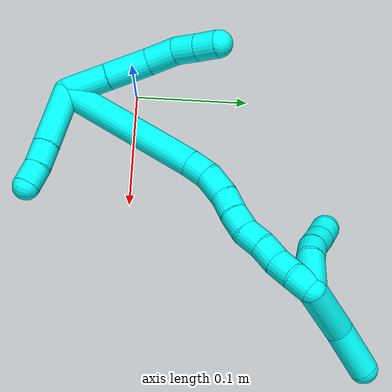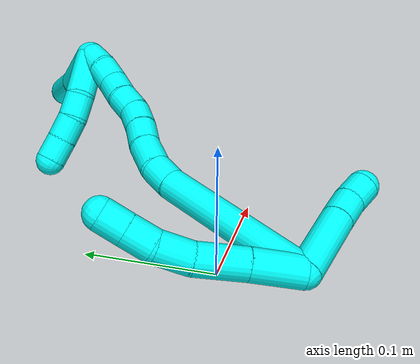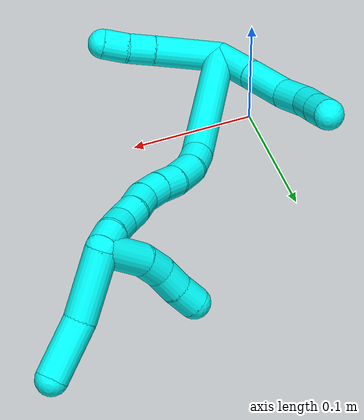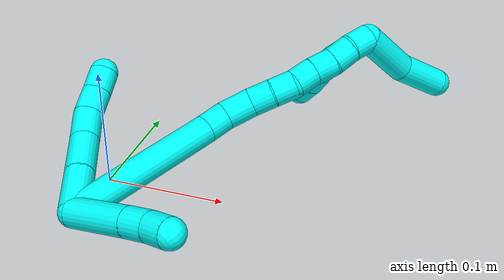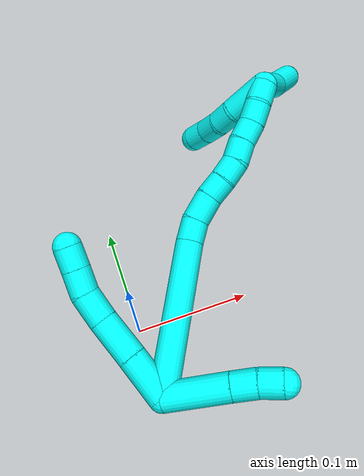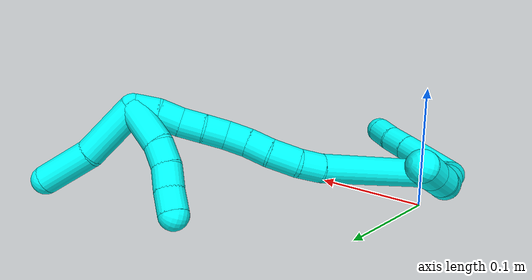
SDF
<sdf version="1.7">
 <world name="default">
  <model name="3">
   <static>0</static>
   <link name="3">
    <collision name="collision-cylinder-e_1_2_8">
     <pose>-0.002732 0.014466 0.013894 -0.805537 -0.135355 0.057742</pose>
     <geometry><cylinder><radius>0.0125</radius><length>0.040486</length></cylinder></geometry>
     <surface>
      <friction><ode><mu>1.16</mu><mu2>1.16</mu2><slip1>0</slip1><slip2>0</slip2></ode></friction>
      <contact><ode><kp>1e+06</kp><kd>1</kd><max_vel>0</max_vel><min_depth>0.001</min_depth></ode></contact>
     </surface>
    </collision>
    <visual name="visual-cylinder-e_1_2_8">
     <pose>-0.002732 0.014466 0.013894 -0.805537 -0.135355 0.057742</pose>
     <geometry><cylinder><radius>0.0125</radius><length>0.040486</length></cylinder></geometry>
     <material><ambient>0.003922 1 0.996078 1</ambient></material>
    </visual>
    <collision name="collision-cylinder-e_2_8_9">
     <pose>-0.007586 0.043465 0.040977 -0.83391 -0.107761 0.047767</pose>
     <geometry><cylinder><radius>0.0125</radius><length>0.03948</length></cylinder></geometry>
     <surface>
      <friction><ode><mu>1.16</mu><mu2>1.16</mu2><slip1>0</slip1><slip2>0</slip2></ode></friction>
      <contact><ode><kp>1e+06</kp><kd>1</kd><max_vel>0</max_vel><min_depth>0.001</min_depth></ode></contact>
     </surface>
    </collision>
    <visual name="visual-cylinder-e_2_8_9">
     <pose>-0.007586 0.043465 0.040977 -0.83391 -0.107761 0.047767</pose>
     <geometry><cylinder><radius>0.0125</radius><length>0.03948</length></cylinder></geometry>
     <material><ambient>0.003922 1 0.996078 1</ambient></material>
    </visual>
    <collision name="collision-cylinder-e_3_9_10">
     <pose>-0.013693 0.066444 0.064181 -0.700507 -0.295193 0.108522</pose>
     <geometry><cylinder><radius>0.0125</radius><length>0.027385</length></cylinder></geometry>
     <surface>
      <friction><ode><mu>1.16</mu><mu2>1.16</mu2><slip1>0</slip1><slip2>0</slip2></ode></friction>
      <contact><ode><kp>1e+06</kp><kd>1</kd><max_vel>0</max_vel><min_depth>0.001</min_depth></ode></contact>
     </surface>
    </collision>
    <visual name="visual-cylinder-e_3_9_10">
     <pose>-0.013693 0.066444 0.064181 -0.700507 -0.295193 0.108522</pose>
     <geometry><cylinder><radius>0.0125</radius><length>0.027385</length></cylinder></geometry>
     <material><ambient>0.003922 1 0.996078 1</ambient></material>
    </visual>
    <collision name="collision-cylinder-e_4_10_11">
     <pose>-0.02074 0.079256 0.083882 -0.423623 -0.280754 0.060754</pose>
     <geometry><cylinder><radius>0.0125</radius><length>0.022117</length></cylinder></geometry>
     <surface>
      <friction><ode><mu>1.16</mu><mu2>1.16</mu2><slip1>0</slip1><slip2>0</slip2></ode></friction>
      <contact><ode><kp>1e+06</kp><kd>1</kd><max_vel>0</max_vel><min_depth>0.001</min_depth></ode></contact>
     </surface>
    </collision>
    <visual name="visual-cylinder-e_4_10_11">
     <pose>-0.02074 0.079256 0.083882 -0.423623 -0.280754 0.060754</pose>
     <geometry><cylinder><radius>0.0125</radius><length>0.022117</length></cylinder></geometry>
     <material><ambient>0.003922 1 0.996078 1</ambient></material>
    </visual>
    <collision name="collision-cylinder-e_5_11_6">
     <pose>-0.026948 0.087659 0.102469 -0.425608 -0.311227 0.067771</pose>
     <geometry><cylinder><radius>0.0125</radius><length>0.020532</length></cylinder></geometry>
     <surface>
      <friction><ode><mu>1.16</mu><mu2>1.16</mu2><slip1>0</slip1><slip2>0</slip2></ode></friction>
      <contact><ode><kp>1e+06</kp><kd>1</kd><max_vel>0</max_vel><min_depth>0.001</min_depth></ode></contact>
     </surface>
    </collision>
    <visual name="visual-cylinder-e_5_11_6">
     <pose>-0.026948 0.087659 0.102469 -0.425608 -0.311227 0.067771</pose>
     <geometry><cylinder><radius>0.0125</radius><length>0.020532</length></cylinder></geometry>
     <material><ambient>0.003922 1 0.996078 1</ambient></material>
    </visual>
    <collision name="collision-cylinder-e_1_2_12">
     <pose>0.001964 -0.027382 0.008548 1.2682 0.068346 0.050271</pose>
     <geometry><cylinder><radius>0.0125</radius><length>0.057505</length></cylinder></geometry>
     <surface>
      <friction><ode><mu>1.16</mu><mu2>1.16</mu2><slip1>0</slip1><slip2>0</slip2></ode></friction>
      <contact><ode><kp>1e+06</kp><kd>1</kd><max_vel>0</max_vel><min_depth>0.001</min_depth></ode></contact>
     </surface>
    </collision>
    <visual name="visual-cylinder-e_1_2_12">
     <pose>0.001964 -0.027382 0.008548 1.2682 0.068346 0.050271</pose>
     <geometry><cylinder><radius>0.0125</radius><length>0.057505</length></cylinder></geometry>
     <material><ambient>0.003922 1 0.996078 1</ambient></material>
    </visual>
    <collision name="collision-cylinder-e_2_12_13">
     <pose>0.004889 -0.065181 0.020149 1.28573 0.08841 0.066238</pose>
     <geometry><cylinder><radius>0.0125</radius><length>0.021795</length></cylinder></geometry>
     <surface>
      <friction><ode><mu>1.16</mu><mu2>1.16</mu2><slip1>0</slip1><slip2>0</slip2></ode></friction>
      <contact><ode><kp>1e+06</kp><kd>1</kd><max_vel>0</max_vel><min_depth>0.001</min_depth></ode></contact>
     </surface>
    </collision>
    <visual name="visual-cylinder-e_2_12_13">
     <pose>0.004889 -0.065181 0.020149 1.28573 0.08841 0.066238</pose>
     <geometry><cylinder><radius>0.0125</radius><length>0.021795</length></cylinder></geometry>
     <material><ambient>0.003922 1 0.996078 1</ambient></material>
    </visual>
    <collision name="collision-cylinder-e_3_13_5">
     <pose>0.006308 -0.085813 0.024801 1.41554 0.044117 0.037751</pose>
     <geometry><cylinder><radius>0.0125</radius><length>0.0207</length></cylinder></geometry>
     <surface>
      <friction><ode><mu>1.16</mu><mu2>1.16</mu2><slip1>0</slip1><slip2>0</slip2></ode></friction>
      <contact><ode><kp>1e+06</kp><kd>1</kd><max_vel>0</max_vel><min_depth>0.001</min_depth></ode></contact>
     </surface>
    </collision>
    <visual name="visual-cylinder-e_3_13_5">
     <pose>0.006308 -0.085813 0.024801 1.41554 0.044117 0.037751</pose>
     <geometry><cylinder><radius>0.0125</radius><length>0.0207</length></cylinder></geometry>
     <material><ambient>0.003922 1 0.996078 1</ambient></material>
    </visual>
    <collision name="collision-cylinder-e_1_2_14">
     <pose>0.013434 0.001336 0.065383 -0.020427 0.202603 -0.002076</pose>
     <geometry><cylinder><radius>0.0125</radius><length>0.133524</length></cylinder></geometry>
     <surface>
      <friction><ode><mu>1.16</mu><mu2>1.16</mu2><slip1>0</slip1><slip2>0</slip2></ode></friction>
      <contact><ode><kp>1e+06</kp><kd>1</kd><max_vel>0</max_vel><min_depth>0.001</min_depth></ode></contact>
     </surface>
    </collision>
    <visual name="visual-cylinder-e_1_2_14">
     <pose>0.013434 0.001336 0.065383 -0.020427 0.202603 -0.002076</pose>
     <geometry><cylinder><radius>0.0125</radius><length>0.133524</length></cylinder></geometry>
     <material><ambient>0.003922 1 0.996078 1</ambient></material>
    </visual>
    <collision name="collision-cylinder-e_2_14_15">
     <pose>0.027776 0.001551 0.141137 0.107611 0.08683 0.004679</pose>
     <geometry><cylinder><radius>0.0125</radius><length>0.020942</length></cylinder></geometry>
     <surface>
      <friction><ode><mu>1.16</mu><mu2>1.16</mu2><slip1>0</slip1><slip2>0</slip2></ode></friction>
      <contact><ode><kp>1e+06</kp><kd>1</kd><max_vel>0</max_vel><min_depth>0.001</min_depth></ode></contact>
     </surface>
    </collision>
    <visual name="visual-cylinder-e_2_14_15">
     <pose>0.027776 0.001551 0.141137 0.107611 0.08683 0.004679</pose>
     <geometry><cylinder><radius>0.0125</radius><length>0.020942</length></cylinder></geometry>
     <material><ambient>0.003922 1 0.996078 1</ambient></material>
    </visual>
    <collision name="collision-cylinder-e_3_15_16">
     <pose>0.029549 -0.004352 0.163237 0.387191 0.068184 0.013372</pose>
     <geometry><cylinder><radius>0.0125</radius><length>0.025392</length></cylinder></geometry>
     <surface>
      <friction><ode><mu>1.16</mu><mu2>1.16</mu2><slip1>0</slip1><slip2>0</slip2></ode></friction>
      <contact><ode><kp>1e+06</kp><kd>1</kd><max_vel>0</max_vel><min_depth>0.001</min_depth></ode></contact>
     </surface>
    </collision>
    <visual name="visual-cylinder-e_3_15_16">
     <pose>0.029549 -0.004352 0.163237 0.387191 0.068184 0.013372</pose>
     <geometry><cylinder><radius>0.0125</radius><length>0.025392</length></cylinder></geometry>
     <material><ambient>0.003922 1 0.996078 1</ambient></material>
    </visual>
    <collision name="collision-cylinder-e_4_16_17">
     <pose>0.030739 -0.014573 0.183421 0.571606 0.03232 0.009498</pose>
     <geometry><cylinder><radius>0.0125</radius><length>0.020116</length></cylinder></geometry>
     <surface>
      <friction><ode><mu>1.16</mu><mu2>1.16</mu2><slip1>0</slip1><slip2>0</slip2></ode></friction>
      <contact><ode><kp>1e+06</kp><kd>1</kd><max_vel>0</max_vel><min_depth>0.001</min_depth></ode></contact>
     </surface>
    </collision>
    <visual name="visual-cylinder-e_4_16_17">
     <pose>0.030739 -0.014573 0.183421 0.571606 0.03232 0.009498</pose>
     <geometry><cylinder><radius>0.0125</radius><length>0.020116</length></cylinder></geometry>
     <material><ambient>0.003922 1 0.996078 1</ambient></material>
    </visual>
    <collision name="collision-cylinder-e_5_17_18">
     <pose>0.032035 -0.024484 0.200771 0.465866 0.097231 0.023084</pose>
     <geometry><cylinder><radius>0.0125</radius><length>0.020008</length></cylinder></geometry>
     <surface>
      <friction><ode><mu>1.16</mu><mu2>1.16</mu2><slip1>0</slip1><slip2>0</slip2></ode></friction>
      <contact><ode><kp>1e+06</kp><kd>1</kd><max_vel>0</max_vel><min_depth>0.001</min_depth></ode></contact>
     </surface>
    </collision>
    <visual name="visual-cylinder-e_5_17_18">
     <pose>0.032035 -0.024484 0.200771 0.465866 0.097231 0.023084</pose>
     <geometry><cylinder><radius>0.0125</radius><length>0.020008</length></cylinder></geometry>
     <material><ambient>0.003922 1 0.996078 1</ambient></material>
    </visual>
    <collision name="collision-cylinder-e_6_18_19">
     <pose>0.033618 -0.030713 0.219492 0.176875 0.061236 0.005431</pose>
     <geometry><cylinder><radius>0.0125</radius><length>0.020001</length></cylinder></geometry>
     <surface>
      <friction><ode><mu>1.16</mu><mu2>1.16</mu2><slip1>0</slip1><slip2>0</slip2></ode></friction>
      <contact><ode><kp>1e+06</kp><kd>1</kd><max_vel>0</max_vel><min_depth>0.001</min_depth></ode></contact>
     </surface>
    </collision>
    <visual name="visual-cylinder-e_6_18_19">
     <pose>0.033618 -0.030713 0.219492 0.176875 0.061236 0.005431</pose>
     <geometry><cylinder><radius>0.0125</radius><length>0.020001</length></cylinder></geometry>
     <material><ambient>0.003922 1 0.996078 1</ambient></material>
    </visual>
    <collision name="collision-cylinder-e_7_19_20">
     <pose>0.035455 -0.035702 0.238707 0.331645 0.122684 0.020557</pose>
     <geometry><cylinder><radius>0.0125</radius><length>0.02001</length></cylinder></geometry>
     <surface>
      <friction><ode><mu>1.16</mu><mu2>1.16</mu2><slip1>0</slip1><slip2>0</slip2></ode></friction>
      <contact><ode><kp>1e+06</kp><kd>1</kd><max_vel>0</max_vel><min_depth>0.001</min_depth></ode></contact>
     </surface>
    </collision>
    <visual name="visual-cylinder-e_7_19_20">
     <pose>0.035455 -0.035702 0.238707 0.331645 0.122684 0.020557</pose>
     <geometry><cylinder><radius>0.0125</radius><length>0.02001</length></cylinder></geometry>
     <material><ambient>0.003922 1 0.996078 1</ambient></material>
    </visual>
    <collision name="collision-cylinder-e_8_20_21">
     <pose>0.036256 -0.041079 0.257856 0.216239 -0.042266 -0.004588</pose>
     <geometry><cylinder><radius>0.0125</radius><length>0.020003</length></cylinder></geometry>
     <surface>
      <friction><ode><mu>1.16</mu><mu2>1.16</mu2><slip1>0</slip1><slip2>0</slip2></ode></friction>
      <contact><ode><kp>1e+06</kp><kd>1</kd><max_vel>0</max_vel><min_depth>0.001</min_depth></ode></contact>
     </surface>
    </collision>
    <visual name="visual-cylinder-e_8_20_21">
     <pose>0.036256 -0.041079 0.257856 0.216239 -0.042266 -0.004588</pose>
     <geometry><cylinder><radius>0.0125</radius><length>0.020003</length></cylinder></geometry>
     <material><ambient>0.003922 1 0.996078 1</ambient></material>
    </visual>
    <collision name="collision-cylinder-e_9_21_1">
     <pose>0.03734 -0.04469 0.277394 0.148835 0.151153 0.011291</pose>
     <geometry><cylinder><radius>0.0125</radius><length>0.020004</length></cylinder></geometry>
     <surface>
      <friction><ode><mu>1.16</mu><mu2>1.16</mu2><slip1>0</slip1><slip2>0</slip2></ode></friction>
      <contact><ode><kp>1e+06</kp><kd>1</kd><max_vel>0</max_vel><min_depth>0.001</min_depth></ode></contact>
     </surface>
    </collision>
    <visual name="visual-cylinder-e_9_21_1">
     <pose>0.03734 -0.04469 0.277394 0.148835 0.151153 0.011291</pose>
     <geometry><cylinder><radius>0.0125</radius><length>0.020004</length></cylinder></geometry>
     <material><ambient>0.003922 1 0.996078 1</ambient></material>
    </visual>
    <collision name="collision-cylinder-e_1_1_22">
     <pose>0.063505 -0.046485 0.297742 0.031108 1.16569 0.020509</pose>
     <geometry><cylinder><radius>0.0125</radius><length>0.05366</length></cylinder></geometry>
     <surface>
      <friction><ode><mu>1.16</mu><mu2>1.16</mu2><slip1>0</slip1><slip2>0</slip2></ode></friction>
      <contact><ode><kp>1e+06</kp><kd>1</kd><max_vel>0</max_vel><min_depth>0.001</min_depth></ode></contact>
     </surface>
    </collision>
    <visual name="visual-cylinder-e_1_1_22">
     <pose>0.063505 -0.046485 0.297742 0.031108 1.16569 0.020509</pose>
     <geometry><cylinder><radius>0.0125</radius><length>0.05366</length></cylinder></geometry>
     <material><ambient>0.003922 1 0.996078 1</ambient></material>
    </visual>
    <collision name="collision-cylinder-e_2_22_4">
     <pose>0.106915 -0.050517 0.321407 0.275614 0.943003 0.141185</pose>
     <geometry><cylinder><radius>0.0125</radius><length>0.04634</length></cylinder></geometry>
     <surface>
      <friction><ode><mu>1.16</mu><mu2>1.16</mu2><slip1>0</slip1><slip2>0</slip2></ode></friction>
      <contact><ode><kp>1e+06</kp><kd>1</kd><max_vel>0</max_vel><min_depth>0.001</min_depth></ode></contact>
     </surface>
    </collision>
    <visual name="visual-cylinder-e_2_22_4">
     <pose>0.106915 -0.050517 0.321407 0.275614 0.943003 0.141185</pose>
     <geometry><cylinder><radius>0.0125</radius><length>0.04634</length></cylinder></geometry>
     <material><ambient>0.003922 1 0.996078 1</ambient></material>
    </visual>
    <collision name="collision-cylinder-e_1_1_23">
     <pose>0.045043 -0.03121 0.276086 -2.20906 0.321487 -0.623347</pose>
     <geometry><cylinder><radius>0.0125</radius><length>0.039227</length></cylinder></geometry>
     <surface>
      <friction><ode><mu>1.16</mu><mu2>1.16</mu2><slip1>0</slip1><slip2>0</slip2></ode></friction>
      <contact><ode><kp>1e+06</kp><kd>1</kd><max_vel>0</max_vel><min_depth>0.001</min_depth></ode></contact>
     </surface>
    </collision>
    <visual name="visual-cylinder-e_1_1_23">
     <pose>0.045043 -0.03121 0.276086 -2.20906 0.321487 -0.623347</pose>
     <geometry><cylinder><radius>0.0125</radius><length>0.039227</length></cylinder></geometry>
     <material><ambient>0.003922 1 0.996078 1</ambient></material>
    </visual>
    <collision name="collision-cylinder-e_2_23_24">
     <pose>0.056459 -0.00888 0.260691 -2.09886 0.547963 -0.910119</pose>
     <geometry><cylinder><radius>0.0125</radius><length>0.020032</length></cylinder></geometry>
     <surface>
      <friction><ode><mu>1.16</mu><mu2>1.16</mu2><slip1>0</slip1><slip2>0</slip2></ode></friction>
      <contact><ode><kp>1e+06</kp><kd>1</kd><max_vel>0</max_vel><min_depth>0.001</min_depth></ode></contact>
     </surface>
    </collision>
    <visual name="visual-cylinder-e_2_23_24">
     <pose>0.056459 -0.00888 0.260691 -2.09886 0.547963 -0.910119</pose>
     <geometry><cylinder><radius>0.0125</radius><length>0.020032</length></cylinder></geometry>
     <material><ambient>0.003922 1 0.996078 1</ambient></material>
    </visual>
    <collision name="collision-cylinder-e_3_24_25">
     <pose>0.068071 0.006292 0.254131 -1.85229 0.667877 -0.864697</pose>
     <geometry><cylinder><radius>0.0125</radius><length>0.02065</length></cylinder></geometry>
     <surface>
      <friction><ode><mu>1.16</mu><mu2>1.16</mu2><slip1>0</slip1><slip2>0</slip2></ode></friction>
      <contact><ode><kp>1e+06</kp><kd>1</kd><max_vel>0</max_vel><min_depth>0.001</min_depth></ode></contact>
     </surface>
    </collision>
    <visual name="visual-cylinder-e_3_24_25">
     <pose>0.068071 0.006292 0.254131 -1.85229 0.667877 -0.864697</pose>
     <geometry><cylinder><radius>0.0125</radius><length>0.02065</length></cylinder></geometry>
     <material><ambient>0.003922 1 0.996078 1</ambient></material>
    </visual>
    <collision name="collision-cylinder-e_4_25_3">
     <pose>0.079814 0.022195 0.249339 -1.87415 0.561504 -0.747928</pose>
     <geometry><cylinder><radius>0.0125</radius><length>0.02009</length></cylinder></geometry>
     <surface>
      <friction><ode><mu>1.16</mu><mu2>1.16</mu2><slip1>0</slip1><slip2>0</slip2></ode></friction>
      <contact><ode><kp>1e+06</kp><kd>1</kd><max_vel>0</max_vel><min_depth>0.001</min_depth></ode></contact>
     </surface>
    </collision>
    <visual name="visual-cylinder-e_4_25_3">
     <pose>0.079814 0.022195 0.249339 -1.87415 0.561504 -0.747928</pose>
     <geometry><cylinder><radius>0.0125</radius><length>0.02009</length></cylinder></geometry>
     <material><ambient>0.003922 1 0.996078 1</ambient></material>
    </visual>
    <collision name="collision-sphere-3">
     <pose>0.085163 0.030309 0.246799 0 -0 0</pose>
     <geometry><sphere><radius>0.0125</radius></sphere></geometry>
     <surface>
      <friction><ode><mu>1.16</mu><mu2>1.16</mu2><slip1>0</slip1><slip2>0</slip2></ode></friction>
      <contact><ode><kp>1e+06</kp><kd>1</kd><max_vel>0</max_vel><min_depth>0.001</min_depth></ode></contact>
     </surface>
    </collision>
    <visual name="visual-sphere-3">
     <pose>0.085163 0.030309 0.246799 0 -0 0</pose>
     <geometry><sphere><radius>0.0125</radius></sphere></geometry>
     <material><ambient>0.003922 1 0.996078 1</ambient></material>
    </visual>
    <collision name="collision-sphere-25">
     <pose>0.074466 0.01408 0.251879 0 -0 0</pose>
     <geometry><sphere><radius>0.0125</radius></sphere></geometry>
     <surface>
      <friction><ode><mu>1.16</mu><mu2>1.16</mu2><slip1>0</slip1><slip2>0</slip2></ode></friction>
      <contact><ode><kp>1e+06</kp><kd>1</kd><max_vel>0</max_vel><min_depth>0.001</min_depth></ode></contact>
     </surface>
    </collision>
    <visual name="visual-sphere-25">
     <pose>0.074466 0.01408 0.251879 0 -0 0</pose>
     <geometry><sphere><radius>0.0125</radius></sphere></geometry>
     <material><ambient>0.003922 1 0.996078 1</ambient></material>
    </visual>
    <collision name="collision-sphere-24">
     <pose>0.061677 -0.001495 0.256383 0 -0 0</pose>
     <geometry><sphere><radius>0.0125</radius></sphere></geometry>
     <surface>
      <friction><ode><mu>1.16</mu><mu2>1.16</mu2><slip1>0</slip1><slip2>0</slip2></ode></friction>
      <contact><ode><kp>1e+06</kp><kd>1</kd><max_vel>0</max_vel><min_depth>0.001</min_depth></ode></contact>
     </surface>
    </collision>
    <visual name="visual-sphere-24">
     <pose>0.061677 -0.001495 0.256383 0 -0 0</pose>
     <geometry><sphere><radius>0.0125</radius></sphere></geometry>
     <material><ambient>0.003922 1 0.996078 1</ambient></material>
    </visual>
    <collision name="collision-sphere-23">
     <pose>0.051241 -0.016265 0.264998 0 -0 0</pose>
     <geometry><sphere><radius>0.0125</radius></sphere></geometry>
     <surface>
      <friction><ode><mu>1.16</mu><mu2>1.16</mu2><slip1>0</slip1><slip2>0</slip2></ode></friction>
      <contact><ode><kp>1e+06</kp><kd>1</kd><max_vel>0</max_vel><min_depth>0.001</min_depth></ode></contact>
     </surface>
    </collision>
    <visual name="visual-sphere-23">
     <pose>0.051241 -0.016265 0.264998 0 -0 0</pose>
     <geometry><sphere><radius>0.0125</radius></sphere></geometry>
     <material><ambient>0.003922 1 0.996078 1</ambient></material>
    </visual>
    <collision name="collision-sphere-4">
     <pose>0.125667 -0.054221 0.334502 0 -0 0</pose>
     <geometry><sphere><radius>0.0125</radius></sphere></geometry>
     <surface>
      <friction><ode><mu>1.16</mu><mu2>1.16</mu2><slip1>0</slip1><slip2>0</slip2></ode></friction>
      <contact><ode><kp>1e+06</kp><kd>1</kd><max_vel>0</max_vel><min_depth>0.001</min_depth></ode></contact>
     </surface>
    </collision>
    <visual name="visual-sphere-4">
     <pose>0.125667 -0.054221 0.334502 0 -0 0</pose>
     <geometry><sphere><radius>0.0125</radius></sphere></geometry>
     <material><ambient>0.003922 1 0.996078 1</ambient></material>
    </visual>
    <collision name="collision-sphere-22">
     <pose>0.088163 -0.046814 0.308311 0 -0 0</pose>
     <geometry><sphere><radius>0.0125</radius></sphere></geometry>
     <surface>
      <friction><ode><mu>1.16</mu><mu2>1.16</mu2><slip1>0</slip1><slip2>0</slip2></ode></friction>
      <contact><ode><kp>1e+06</kp><kd>1</kd><max_vel>0</max_vel><min_depth>0.001</min_depth></ode></contact>
     </surface>
    </collision>
    <visual name="visual-sphere-22">
     <pose>0.088163 -0.046814 0.308311 0 -0 0</pose>
     <geometry><sphere><radius>0.0125</radius></sphere></geometry>
     <material><ambient>0.003922 1 0.996078 1</ambient></material>
    </visual>
    <collision name="collision-sphere-1">
     <pose>0.038846 -0.046156 0.287173 0 -0 0</pose>
     <geometry><sphere><radius>0.0125</radius></sphere></geometry>
     <surface>
      <friction><ode><mu>1.16</mu><mu2>1.16</mu2><slip1>0</slip1><slip2>0</slip2></ode></friction>
      <contact><ode><kp>1e+06</kp><kd>1</kd><max_vel>0</max_vel><min_depth>0.001</min_depth></ode></contact>
     </surface>
    </collision>
    <visual name="visual-sphere-1">
     <pose>0.038846 -0.046156 0.287173 0 -0 0</pose>
     <geometry><sphere><radius>0.0125</radius></sphere></geometry>
     <material><ambient>0.003922 1 0.996078 1</ambient></material>
    </visual>
    <collision name="collision-sphere-21">
     <pose>0.035834 -0.043223 0.267615 0 -0 0</pose>
     <geometry><sphere><radius>0.0125</radius></sphere></geometry>
     <surface>
      <friction><ode><mu>1.16</mu><mu2>1.16</mu2><slip1>0</slip1><slip2>0</slip2></ode></friction>
      <contact><ode><kp>1e+06</kp><kd>1</kd><max_vel>0</max_vel><min_depth>0.001</min_depth></ode></contact>
     </surface>
    </collision>
    <visual name="visual-sphere-21">
     <pose>0.035834 -0.043223 0.267615 0 -0 0</pose>
     <geometry><sphere><radius>0.0125</radius></sphere></geometry>
     <material><ambient>0.003922 1 0.996078 1</ambient></material>
    </visual>
    <collision name="collision-sphere-6">
     <pose>-0.030092 0.091694 0.11137 0 -0 0</pose>
     <geometry><sphere><radius>0.0125</radius></sphere></geometry>
     <surface>
      <friction><ode><mu>1.16</mu><mu2>1.16</mu2><slip1>0</slip1><slip2>0</slip2></ode></friction>
      <contact><ode><kp>1e+06</kp><kd>1</kd><max_vel>0</max_vel><min_depth>0.001</min_depth></ode></contact>
     </surface>
    </collision>
    <visual name="visual-sphere-6">
     <pose>-0.030092 0.091694 0.11137 0 -0 0</pose>
     <geometry><sphere><radius>0.0125</radius></sphere></geometry>
     <material><ambient>0.003922 1 0.996078 1</ambient></material>
    </visual>
    <collision name="collision-sphere-11">
     <pose>-0.023804 0.083624 0.093568 0 -0 0</pose>
     <geometry><sphere><radius>0.0125</radius></sphere></geometry>
     <surface>
      <friction><ode><mu>1.16</mu><mu2>1.16</mu2><slip1>0</slip1><slip2>0</slip2></ode></friction>
      <contact><ode><kp>1e+06</kp><kd>1</kd><max_vel>0</max_vel><min_depth>0.001</min_depth></ode></contact>
     </surface>
    </collision>
    <visual name="visual-sphere-11">
     <pose>-0.023804 0.083624 0.093568 0 -0 0</pose>
     <geometry><sphere><radius>0.0125</radius></sphere></geometry>
     <material><ambient>0.003922 1 0.996078 1</ambient></material>
    </visual>
    <collision name="collision-sphere-10">
     <pose>-0.017676 0.074888 0.074196 0 -0 0</pose>
     <geometry><sphere><radius>0.0125</radius></sphere></geometry>
     <surface>
      <friction><ode><mu>1.16</mu><mu2>1.16</mu2><slip1>0</slip1><slip2>0</slip2></ode></friction>
      <contact><ode><kp>1e+06</kp><kd>1</kd><max_vel>0</max_vel><min_depth>0.001</min_depth></ode></contact>
     </surface>
    </collision>
    <visual name="visual-sphere-10">
     <pose>-0.017676 0.074888 0.074196 0 -0 0</pose>
     <geometry><sphere><radius>0.0125</radius></sphere></geometry>
     <material><ambient>0.003922 1 0.996078 1</ambient></material>
    </visual>
    <collision name="collision-sphere-9">
     <pose>-0.009709 0.057999 0.054165 0 -0 0</pose>
     <geometry><sphere><radius>0.0125</radius></sphere></geometry>
     <surface>
      <friction><ode><mu>1.16</mu><mu2>1.16</mu2><slip1>0</slip1><slip2>0</slip2></ode></friction>
      <contact><ode><kp>1e+06</kp><kd>1</kd><max_vel>0</max_vel><min_depth>0.001</min_depth></ode></contact>
     </surface>
    </collision>
    <visual name="visual-sphere-9">
     <pose>-0.009709 0.057999 0.054165 0 -0 0</pose>
     <geometry><sphere><radius>0.0125</radius></sphere></geometry>
     <material><ambient>0.003922 1 0.996078 1</ambient></material>
    </visual>
    <collision name="collision-sphere-2">
     <geometry><sphere><radius>0.0125</radius></sphere></geometry>
     <surface>
      <friction><ode><mu>1.16</mu><mu2>1.16</mu2><slip1>0</slip1><slip2>0</slip2></ode></friction>
      <contact><ode><kp>1e+06</kp><kd>1</kd><max_vel>0</max_vel><min_depth>0.001</min_depth></ode></contact>
     </surface>
    </collision>
    <visual name="visual-sphere-2">
     <geometry><sphere><radius>0.0125</radius></sphere></geometry>
     <material><ambient>0.003922 1 0.996078 1</ambient></material>
    </visual>
    <collision name="collision-sphere-19">
     <pose>0.03423 -0.032469 0.229318 0 -0 0</pose>
     <geometry><sphere><radius>0.0125</radius></sphere></geometry>
     <surface>
      <friction><ode><mu>1.16</mu><mu2>1.16</mu2><slip1>0</slip1><slip2>0</slip2></ode></friction>
      <contact><ode><kp>1e+06</kp><kd>1</kd><max_vel>0</max_vel><min_depth>0.001</min_depth></ode></contact>
     </surface>
    </collision>
    <visual name="visual-sphere-19">
     <pose>0.03423 -0.032469 0.229318 0 -0 0</pose>
     <geometry><sphere><radius>0.0125</radius></sphere></geometry>
     <material><ambient>0.003922 1 0.996078 1</ambient></material>
    </visual>
    <collision name="collision-sphere-8">
     <pose>-0.005463 0.028931 0.027789 0 -0 0</pose>
     <geometry><sphere><radius>0.0125</radius></sphere></geometry>
     <surface>
      <friction><ode><mu>1.16</mu><mu2>1.16</mu2><slip1>0</slip1><slip2>0</slip2></ode></friction>
      <contact><ode><kp>1e+06</kp><kd>1</kd><max_vel>0</max_vel><min_depth>0.001</min_depth></ode></contact>
     </surface>
    </collision>
    <visual name="visual-sphere-8">
     <pose>-0.005463 0.028931 0.027789 0 -0 0</pose>
     <geometry><sphere><radius>0.0125</radius></sphere></geometry>
     <material><ambient>0.003922 1 0.996078 1</ambient></material>
    </visual>
    <collision name="collision-sphere-12">
     <pose>0.003927 -0.054764 0.017097 0 -0 0</pose>
     <geometry><sphere><radius>0.0125</radius></sphere></geometry>
     <surface>
      <friction><ode><mu>1.16</mu><mu2>1.16</mu2><slip1>0</slip1><slip2>0</slip2></ode></friction>
      <contact><ode><kp>1e+06</kp><kd>1</kd><max_vel>0</max_vel><min_depth>0.001</min_depth></ode></contact>
     </surface>
    </collision>
    <visual name="visual-sphere-12">
     <pose>0.003927 -0.054764 0.017097 0 -0 0</pose>
     <geometry><sphere><radius>0.0125</radius></sphere></geometry>
     <material><ambient>0.003922 1 0.996078 1</ambient></material>
    </visual>
    <collision name="collision-sphere-13">
     <pose>0.005852 -0.075598 0.023202 0 -0 0</pose>
     <geometry><sphere><radius>0.0125</radius></sphere></geometry>
     <surface>
      <friction><ode><mu>1.16</mu><mu2>1.16</mu2><slip1>0</slip1><slip2>0</slip2></ode></friction>
      <contact><ode><kp>1e+06</kp><kd>1</kd><max_vel>0</max_vel><min_depth>0.001</min_depth></ode></contact>
     </surface>
    </collision>
    <visual name="visual-sphere-13">
     <pose>0.005852 -0.075598 0.023202 0 -0 0</pose>
     <geometry><sphere><radius>0.0125</radius></sphere></geometry>
     <material><ambient>0.003922 1 0.996078 1</ambient></material>
    </visual>
    <collision name="collision-sphere-5">
     <pose>0.006764 -0.096029 0.0264 0 -0 0</pose>
     <geometry><sphere><radius>0.0125</radius></sphere></geometry>
     <surface>
      <friction><ode><mu>1.16</mu><mu2>1.16</mu2><slip1>0</slip1><slip2>0</slip2></ode></friction>
      <contact><ode><kp>1e+06</kp><kd>1</kd><max_vel>0</max_vel><min_depth>0.001</min_depth></ode></contact>
     </surface>
    </collision>
    <visual name="visual-sphere-5">
     <pose>0.006764 -0.096029 0.0264 0 -0 0</pose>
     <geometry><sphere><radius>0.0125</radius></sphere></geometry>
     <material><ambient>0.003922 1 0.996078 1</ambient></material>
    </visual>
    <collision name="collision-sphere-14">
     <pose>0.026868 0.002672 0.130766 0 -0 0</pose>
     <geometry><sphere><radius>0.0125</radius></sphere></geometry>
     <surface>
      <friction><ode><mu>1.16</mu><mu2>1.16</mu2><slip1>0</slip1><slip2>0</slip2></ode></friction>
      <contact><ode><kp>1e+06</kp><kd>1</kd><max_vel>0</max_vel><min_depth>0.001</min_depth></ode></contact>
     </surface>
    </collision>
    <visual name="visual-sphere-14">
     <pose>0.026868 0.002672 0.130766 0 -0 0</pose>
     <geometry><sphere><radius>0.0125</radius></sphere></geometry>
     <material><ambient>0.003922 1 0.996078 1</ambient></material>
    </visual>
    <collision name="collision-sphere-15">
     <pose>0.028684 0.000431 0.151508 0 -0 0</pose>
     <geometry><sphere><radius>0.0125</radius></sphere></geometry>
     <surface>
      <friction><ode><mu>1.16</mu><mu2>1.16</mu2><slip1>0</slip1><slip2>0</slip2></ode></friction>
      <contact><ode><kp>1e+06</kp><kd>1</kd><max_vel>0</max_vel><min_depth>0.001</min_depth></ode></contact>
     </surface>
    </collision>
    <visual name="visual-sphere-15">
     <pose>0.028684 0.000431 0.151508 0 -0 0</pose>
     <geometry><sphere><radius>0.0125</radius></sphere></geometry>
     <material><ambient>0.003922 1 0.996078 1</ambient></material>
    </visual>
    <collision name="collision-sphere-16">
     <pose>0.030414 -0.009135 0.174966 0 -0 0</pose>
     <geometry><sphere><radius>0.0125</radius></sphere></geometry>
     <surface>
      <friction><ode><mu>1.16</mu><mu2>1.16</mu2><slip1>0</slip1><slip2>0</slip2></ode></friction>
      <contact><ode><kp>1e+06</kp><kd>1</kd><max_vel>0</max_vel><min_depth>0.001</min_depth></ode></contact>
     </surface>
    </collision>
    <visual name="visual-sphere-16">
     <pose>0.030414 -0.009135 0.174966 0 -0 0</pose>
     <geometry><sphere><radius>0.0125</radius></sphere></geometry>
     <material><ambient>0.003922 1 0.996078 1</ambient></material>
    </visual>
    <collision name="collision-sphere-17">
     <pose>0.031064 -0.020011 0.191875 0 -0 0</pose>
     <geometry><sphere><radius>0.0125</radius></sphere></geometry>
     <surface>
      <friction><ode><mu>1.16</mu><mu2>1.16</mu2><slip1>0</slip1><slip2>0</slip2></ode></friction>
      <contact><ode><kp>1e+06</kp><kd>1</kd><max_vel>0</max_vel><min_depth>0.001</min_depth></ode></contact>
     </surface>
    </collision>
    <visual name="visual-sphere-17">
     <pose>0.031064 -0.020011 0.191875 0 -0 0</pose>
     <geometry><sphere><radius>0.0125</radius></sphere></geometry>
     <material><ambient>0.003922 1 0.996078 1</ambient></material>
    </visual>
    <collision name="collision-sphere-18">
     <pose>0.033006 -0.028956 0.209667 0 -0 0</pose>
     <geometry><sphere><radius>0.0125</radius></sphere></geometry>
     <surface>
      <friction><ode><mu>1.16</mu><mu2>1.16</mu2><slip1>0</slip1><slip2>0</slip2></ode></friction>
      <contact><ode><kp>1e+06</kp><kd>1</kd><max_vel>0</max_vel><min_depth>0.001</min_depth></ode></contact>
     </surface>
    </collision>
    <visual name="visual-sphere-18">
     <pose>0.033006 -0.028956 0.209667 0 -0 0</pose>
     <geometry><sphere><radius>0.0125</radius></sphere></geometry>
     <material><ambient>0.003922 1 0.996078 1</ambient></material>
    </visual>
    <collision name="collision-sphere-20">
     <pose>0.036679 -0.038935 0.248096 0 -0 0</pose>
     <geometry><sphere><radius>0.0125</radius></sphere></geometry>
     <surface>
      <friction><ode><mu>1.16</mu><mu2>1.16</mu2><slip1>0</slip1><slip2>0</slip2></ode></friction>
      <contact><ode><kp>1e+06</kp><kd>1</kd><max_vel>0</max_vel><min_depth>0.001</min_depth></ode></contact>
     </surface>
    </collision>
    <visual name="visual-sphere-20">
     <pose>0.036679 -0.038935 0.248096 0 -0 0</pose>
     <geometry><sphere><radius>0.0125</radius></sphere></geometry>
     <material><ambient>0.003922 1 0.996078 1</ambient></material>
    </visual>
    <inertial>
     <pose>0.026748 -0.008648 0.146576 0 -0 0</pose>
     <mass>0.75</mass>
     <inertia>
      <ixx>0.00028</ixx>
      <ixy>0</ixy>
      <ixz>0</ixz>
      <iyy>0.000258</iyy>
      <iyz>0</iyz>
      <izz>-3.2e-05</izz>
     </inertia>
    </inertial>
   </link>
   <pose>0.001827 -0.062573 0.012024 -0.547116 1.15951 0.503529</pose>
  </model>
 </world>
</sdf>
